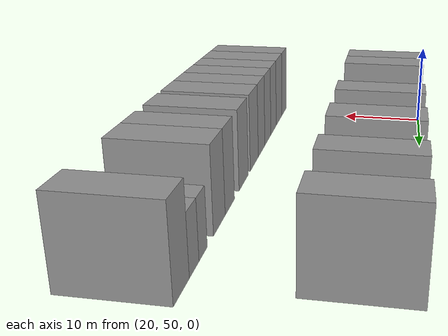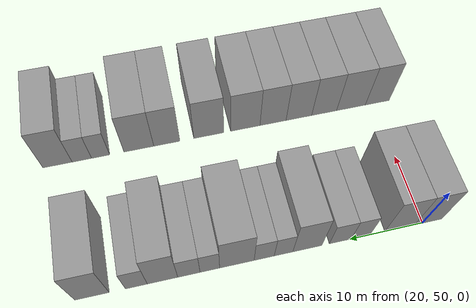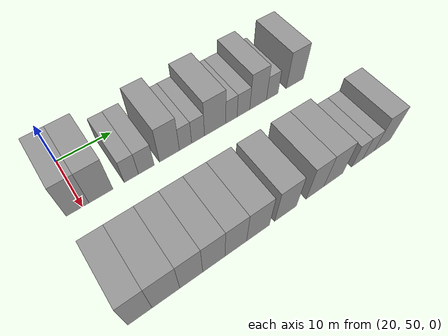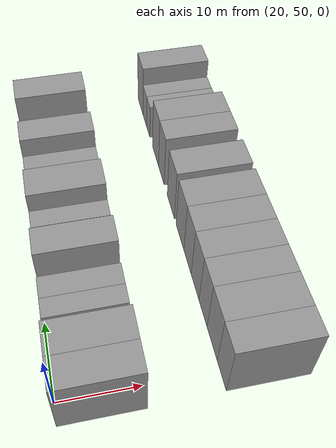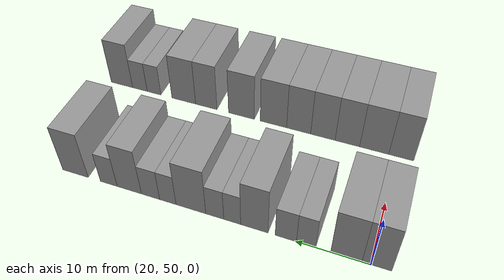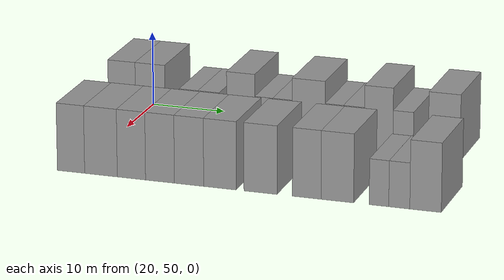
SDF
<sdf version="1.6">
 <world name="default">
  <model name="building_61">
   <static>1</static>
   <pose>25.0000 49.2391 0 0.000000 0.000000 0.000000</pose>
   <link name="link">
    <pose>0 0 4.50 0 0 0</pose>
    <collision name="collision"><geometry><box><size>10.0000 3.8010 9.0000</size></box></geometry></collision>
    <visual name="visual">
     <cast_shadows>0</cast_shadows>
     <geometry><box><size>10.0000 3.8010 9.0000</size></box></geometry>
     <material>
      <script>
       <uri>model://grey_wall/materials/scripts</uri>
       <uri>model://grey_wall/materials/textures</uri>
       <name>vrc/grey_wall</name>
      </script>
     </material>
    </visual>
   </link>
  </model>
  <model name="building_62">
   <static>1</static>
   <pose>25.0000 53.1972 0 0.000000 0.000000 0.000000</pose>
   <link name="link">
    <pose>0 0 4.50 0 0 0</pose>
    <collision name="collision"><geometry><box><size>10.0000 4.1154 9.0000</size></box></geometry></collision>
    <visual name="visual">
     <cast_shadows>0</cast_shadows>
     <geometry><box><size>10.0000 4.1154 9.0000</size></box></geometry>
     <material>
      <script>
       <uri>model://grey_wall/materials/scripts</uri>
       <uri>model://grey_wall/materials/textures</uri>
       <name>vrc/grey_wall</name>
      </script>
     </material>
    </visual>
   </link>
  </model>
  <model name="building_63">
   <static>1</static>
   <pose>25.0000 58.5541 0 0.000000 0.000000 0.000000</pose>
   <link name="link">
    <pose>0 0 3.00 0 0 0</pose>
    <collision name="collision"><geometry><box><size>10.0000 2.5984 6.0000</size></box></geometry></collision>
    <visual name="visual">
     <cast_shadows>0</cast_shadows>
     <geometry><box><size>10.0000 2.5984 6.0000</size></box></geometry>
     <material>
      <script>
       <uri>model://grey_wall/materials/scripts</uri>
       <uri>model://grey_wall/materials/textures</uri>
       <name>vrc/grey_wall</name>
      </script>
     </material>
    </visual>
   </link>
  </model>
  <model name="building_64">
   <static>1</static>
   <pose>25.0000 61.3196 0 0.000000 0.000000 0.000000</pose>
   <link name="link">
    <pose>0 0 3.00 0 0 0</pose>
    <collision name="collision"><geometry><box><size>10.0000 2.9327 6.0000</size></box></geometry></collision>
    <visual name="visual">
     <cast_shadows>0</cast_shadows>
     <geometry><box><size>10.0000 2.9327 6.0000</size></box></geometry>
     <material>
      <script>
       <uri>model://grey_wall/materials/scripts</uri>
       <uri>model://grey_wall/materials/textures</uri>
       <name>vrc/grey_wall</name>
      </script>
     </material>
    </visual>
   </link>
  </model>
  <model name="building_65">
   <static>1</static>
   <pose>25.0000 65.7250 0 0.000000 0.000000 0.000000</pose>
   <link name="link">
    <pose>0 0 4.50 0 0 0</pose>
    <collision name="collision"><geometry><box><size>10.0000 3.8782 9.0000</size></box></geometry></collision>
    <visual name="visual">
     <cast_shadows>0</cast_shadows>
     <geometry><box><size>10.0000 3.8782 9.0000</size></box></geometry>
     <material>
      <script>
       <uri>model://grey_wall/materials/scripts</uri>
       <uri>model://grey_wall/materials/textures</uri>
       <name>vrc/grey_wall</name>
      </script>
     </material>
    </visual>
   </link>
  </model>
  <model name="building_66">
   <static>1</static>
   <pose>25.0000 68.8838 0 0.000000 0.000000 0.000000</pose>
   <link name="link">
    <pose>0 0 3.00 0 0 0</pose>
    <collision name="collision"><geometry><box><size>10.0000 2.4393 6.0000</size></box></geometry></collision>
    <visual name="visual">
     <cast_shadows>0</cast_shadows>
     <geometry><box><size>10.0000 2.4393 6.0000</size></box></geometry>
     <material>
      <script>
       <uri>model://grey_wall/materials/scripts</uri>
       <uri>model://grey_wall/materials/textures</uri>
       <name>vrc/grey_wall</name>
      </script>
     </material>
    </visual>
   </link>
  </model>
  <model name="building_67">
   <static>1</static>
   <pose>25.0000 71.4179 0 0.000000 0.000000 0.000000</pose>
   <link name="link">
    <pose>0 0 3.00 0 0 0</pose>
    <collision name="collision"><geometry><box><size>10.0000 2.6290 6.0000</size></box></geometry></collision>
    <visual name="visual">
     <cast_shadows>0</cast_shadows>
     <geometry><box><size>10.0000 2.6290 6.0000</size></box></geometry>
     <material>
      <script>
       <uri>model://grey_wall/materials/scripts</uri>
       <uri>model://grey_wall/materials/textures</uri>
       <name>vrc/grey_wall</name>
      </script>
     </material>
    </visual>
   </link>
  </model>
  <model name="building_68">
   <static>1</static>
   <pose>25.0000 74.9587 0 0.000000 0.000000 0.000000</pose>
   <link name="link">
    <pose>0 0 4.50 0 0 0</pose>
    <collision name="collision"><geometry><box><size>10.0000 4.4525 9.0000</size></box></geometry></collision>
    <visual name="visual">
     <cast_shadows>0</cast_shadows>
     <geometry><box><size>10.0000 4.4525 9.0000</size></box></geometry>
     <material>
      <script>
       <uri>model://grey_wall/materials/scripts</uri>
       <uri>model://grey_wall/materials/textures</uri>
       <name>vrc/grey_wall</name>
      </script>
     </material>
    </visual>
   </link>
  </model>
  <model name="building_69">
   <static>1</static>
   <pose>25.0000 78.4332 0 0.000000 0.000000 0.000000</pose>
   <link name="link">
    <pose>0 0 3.00 0 0 0</pose>
    <collision name="collision"><geometry><box><size>10.0000 2.4965 6.0000</size></box></geometry></collision>
    <visual name="visual">
     <cast_shadows>0</cast_shadows>
     <geometry><box><size>10.0000 2.4965 6.0000</size></box></geometry>
     <material>
      <script>
       <uri>model://grey_wall/materials/scripts</uri>
       <uri>model://grey_wall/materials/textures</uri>
       <name>vrc/grey_wall</name>
      </script>
     </material>
    </visual>
   </link>
  </model>
  <model name="building_70">
   <static>1</static>
   <pose>25.0000 81.0950 0 0.000000 0.000000 0.000000</pose>
   <link name="link">
    <pose>0 0 3.00 0 0 0</pose>
    <collision name="collision"><geometry><box><size>10.0000 2.8271 6.0000</size></box></geometry></collision>
    <visual name="visual">
     <cast_shadows>0</cast_shadows>
     <geometry><box><size>10.0000 2.8271 6.0000</size></box></geometry>
     <material>
      <script>
       <uri>model://grey_wall/materials/scripts</uri>
       <uri>model://grey_wall/materials/textures</uri>
       <name>vrc/grey_wall</name>
      </script>
     </material>
    </visual>
   </link>
  </model>
  <model name="building_71">
   <static>1</static>
   <pose>25.0000 84.4213 0 0.000000 0.000000 0.000000</pose>
   <link name="link">
    <pose>0 0 4.50 0 0 0</pose>
    <collision name="collision"><geometry><box><size>10.0000 3.8255 9.0000</size></box></geometry></collision>
    <visual name="visual">
     <cast_shadows>0</cast_shadows>
     <geometry><box><size>10.0000 3.8255 9.0000</size></box></geometry>
     <material>
      <script>
       <uri>model://grey_wall/materials/scripts</uri>
       <uri>model://grey_wall/materials/textures</uri>
       <name>vrc/grey_wall</name>
      </script>
     </material>
    </visual>
   </link>
  </model>
  <model name="building_72">
   <static>1</static>
   <pose>25.0000 87.6962 0 0.000000 0.000000 0.000000</pose>
   <link name="link">
    <pose>0 0 3.00 0 0 0</pose>
    <collision name="collision"><geometry><box><size>10.0000 2.7242 6.0000</size></box></geometry></collision>
    <visual name="visual">
     <cast_shadows>0</cast_shadows>
     <geometry><box><size>10.0000 2.7242 6.0000</size></box></geometry>
     <material>
      <script>
       <uri>model://grey_wall/materials/scripts</uri>
       <uri>model://grey_wall/materials/textures</uri>
       <name>vrc/grey_wall</name>
      </script>
     </material>
    </visual>
   </link>
  </model>
  <model name="building_73">
   <static>1</static>
   <pose>25.0000 93.1624 0 0.000000 0.000000 0.000000</pose>
   <link name="link">
    <pose>0 0 4.50 0 0 0</pose>
    <collision name="collision"><geometry><box><size>10.0000 4.2083 9.0000</size></box></geometry></collision>
    <visual name="visual">
     <cast_shadows>0</cast_shadows>
     <geometry><box><size>10.0000 4.2083 9.0000</size></box></geometry>
     <material>
      <script>
       <uri>model://grey_wall/materials/scripts</uri>
       <uri>model://grey_wall/materials/textures</uri>
       <name>vrc/grey_wall</name>
      </script>
     </material>
    </visual>
   </link>
  </model>
  <model name="building_158">
   <static>1</static>
   <pose>44.0000 49.3805 0 0.000000 0.000000 0.000000</pose>
   <link name="link">
    <pose>0 0 4.50 0 0 0</pose>
    <collision name="collision"><geometry><box><size>10.0000 3.7008 9.0000</size></box></geometry></collision>
    <visual name="visual">
     <cast_shadows>0</cast_shadows>
     <geometry><box><size>10.0000 3.7008 9.0000</size></box></geometry>
     <material>
      <script>
       <uri>model://grey_wall/materials/scripts</uri>
       <uri>model://grey_wall/materials/textures</uri>
       <name>vrc/grey_wall</name>
      </script>
     </material>
    </visual>
   </link>
  </model>
  <model name="building_159">
   <static>1</static>
   <pose>44.0000 53.4323 0 0.000000 0.000000 0.000000</pose>
   <link name="link">
    <pose>0 0 4.50 0 0 0</pose>
    <collision name="collision"><geometry><box><size>10.0000 4.4030 9.0000</size></box></geometry></collision>
    <visual name="visual">
     <cast_shadows>0</cast_shadows>
     <geometry><box><size>10.0000 4.4030 9.0000</size></box></geometry>
     <material>
      <script>
       <uri>model://grey_wall/materials/scripts</uri>
       <uri>model://grey_wall/materials/textures</uri>
       <name>vrc/grey_wall</name>
      </script>
     </material>
    </visual>
   </link>
  </model>
  <model name="building_160">
   <static>1</static>
   <pose>44.0000 57.5317 0 0.000000 0.000000 0.000000</pose>
   <link name="link">
    <pose>0 0 4.50 0 0 0</pose>
    <collision name="collision"><geometry><box><size>10.0000 3.7958 9.0000</size></box></geometry></collision>
    <visual name="visual">
     <cast_shadows>0</cast_shadows>
     <geometry><box><size>10.0000 3.7958 9.0000</size></box></geometry>
     <material>
      <script>
       <uri>model://grey_wall/materials/scripts</uri>
       <uri>model://grey_wall/materials/textures</uri>
       <name>vrc/grey_wall</name>
      </script>
     </material>
    </visual>
   </link>
  </model>
  <model name="building_161">
   <static>1</static>
   <pose>44.0000 61.3566 0 0.000000 0.000000 0.000000</pose>
   <link name="link">
    <pose>0 0 4.50 0 0 0</pose>
    <collision name="collision"><geometry><box><size>10.0000 3.8540 9.0000</size></box></geometry></collision>
    <visual name="visual">
     <cast_shadows>0</cast_shadows>
     <geometry><box><size>10.0000 3.8540 9.0000</size></box></geometry>
     <material>
      <script>
       <uri>model://grey_wall/materials/scripts</uri>
       <uri>model://grey_wall/materials/textures</uri>
       <name>vrc/grey_wall</name>
      </script>
     </material>
    </visual>
   </link>
  </model>
  <model name="building_162">
   <static>1</static>
   <pose>44.0000 65.2280 0 0.000000 0.000000 0.000000</pose>
   <link name="link">
    <pose>0 0 4.50 0 0 0</pose>
    <collision name="collision"><geometry><box><size>10.0000 3.8887 9.0000</size></box></geometry></collision>
    <visual name="visual">
     <cast_shadows>0</cast_shadows>
     <geometry><box><size>10.0000 3.8887 9.0000</size></box></geometry>
     <material>
      <script>
       <uri>model://grey_wall/materials/scripts</uri>
       <uri>model://grey_wall/materials/textures</uri>
       <name>vrc/grey_wall</name>
      </script>
     </material>
    </visual>
   </link>
  </model>
  <model name="building_163">
   <static>1</static>
   <pose>44.0000 69.3342 0 0.000000 0.000000 0.000000</pose>
   <link name="link">
    <pose>0 0 4.50 0 0 0</pose>
    <collision name="collision"><geometry><box><size>10.0000 4.3236 9.0000</size></box></geometry></collision>
    <visual name="visual">
     <cast_shadows>0</cast_shadows>
     <geometry><box><size>10.0000 4.3236 9.0000</size></box></geometry>
     <material>
      <script>
       <uri>model://grey_wall/materials/scripts</uri>
       <uri>model://grey_wall/materials/textures</uri>
       <name>vrc/grey_wall</name>
      </script>
     </material>
    </visual>
   </link>
  </model>
  <model name="building_164">
   <static>1</static>
   <pose>44.0000 74.6701 0 0.000000 0.000000 0.000000</pose>
   <link name="link">
    <pose>0 0 4.50 0 0 0</pose>
    <collision name="collision"><geometry><box><size>10.0000 4.3483 9.0000</size></box></geometry></collision>
    <visual name="visual">
     <cast_shadows>0</cast_shadows>
     <geometry><box><size>10.0000 4.3483 9.0000</size></box></geometry>
     <material>
      <script>
       <uri>model://grey_wall/materials/scripts</uri>
       <uri>model://grey_wall/materials/textures</uri>
       <name>vrc/grey_wall</name>
      </script>
     </material>
    </visual>
   </link>
  </model>
  <model name="building_165">
   <static>1</static>
   <pose>44.0000 80.7098 0 0.000000 0.000000 0.000000</pose>
   <link name="link">
    <pose>0 0 4.50 0 0 0</pose>
    <collision name="collision"><geometry><box><size>10.0000 3.7311 9.0000</size></box></geometry></collision>
    <visual name="visual">
     <cast_shadows>0</cast_shadows>
     <geometry><box><size>10.0000 3.7311 9.0000</size></box></geometry>
     <material>
      <script>
       <uri>model://grey_wall/materials/scripts</uri>
       <uri>model://grey_wall/materials/textures</uri>
       <name>vrc/grey_wall</name>
      </script>
     </material>
    </visual>
   </link>
  </model>
  <model name="building_166">
   <static>1</static>
   <pose>44.0000 84.6831 0 0.000000 0.000000 0.000000</pose>
   <link name="link">
    <pose>0 0 4.50 0 0 0</pose>
    <collision name="collision"><geometry><box><size>10.0000 4.2155 9.0000</size></box></geometry></collision>
    <visual name="visual">
     <cast_shadows>0</cast_shadows>
     <geometry><box><size>10.0000 4.2155 9.0000</size></box></geometry>
     <material>
      <script>
       <uri>model://grey_wall/materials/scripts</uri>
       <uri>model://grey_wall/materials/textures</uri>
       <name>vrc/grey_wall</name>
      </script>
     </material>
    </visual>
   </link>
  </model>
  <model name="building_167">
   <static>1</static>
   <pose>44.0000 90.0458 0 0.000000 0.000000 0.000000</pose>
   <link name="link">
    <pose>0 0 3.00 0 0 0</pose>
    <collision name="collision"><geometry><box><size>10.0000 2.5099 6.0000</size></box></geometry></collision>
    <visual name="visual">
     <cast_shadows>0</cast_shadows>
     <geometry><box><size>10.0000 2.5099 6.0000</size></box></geometry>
     <material>
      <script>
       <uri>model://grey_wall/materials/scripts</uri>
       <uri>model://grey_wall/materials/textures</uri>
       <name>vrc/grey_wall</name>
      </script>
     </material>
    </visual>
   </link>
  </model>
  <model name="building_168">
   <static>1</static>
   <pose>44.0000 92.6474 0 0.000000 0.000000 0.000000</pose>
   <link name="link">
    <pose>0 0 3.00 0 0 0</pose>
    <collision name="collision"><geometry><box><size>10.0000 2.6932 6.0000</size></box></geometry></collision>
    <visual name="visual">
     <cast_shadows>0</cast_shadows>
     <geometry><box><size>10.0000 2.6932 6.0000</size></box></geometry>
     <material>
      <script>
       <uri>model://grey_wall/materials/scripts</uri>
       <uri>model://grey_wall/materials/textures</uri>
       <name>vrc/grey_wall</name>
      </script>
     </material>
    </visual>
   </link>
  </model>
  <model name="building_169">
   <static>1</static>
   <pose>44.0000 95.9989 0 0.000000 0.000000 0.000000</pose>
   <link name="link">
    <pose>0 0 4.50 0 0 0</pose>
    <collision name="collision"><geometry><box><size>10.0000 4.0097 9.0000</size></box></geometry></collision>
    <visual name="visual">
     <cast_shadows>0</cast_shadows>
     <geometry><box><size>10.0000 4.0097 9.0000</size></box></geometry>
     <material>
      <script>
       <uri>model://grey_wall/materials/scripts</uri>
       <uri>model://grey_wall/materials/textures</uri>
       <name>vrc/grey_wall</name>
      </script>
     </material>
    </visual>
   </link>
  </model>
 </world>
</sdf>
